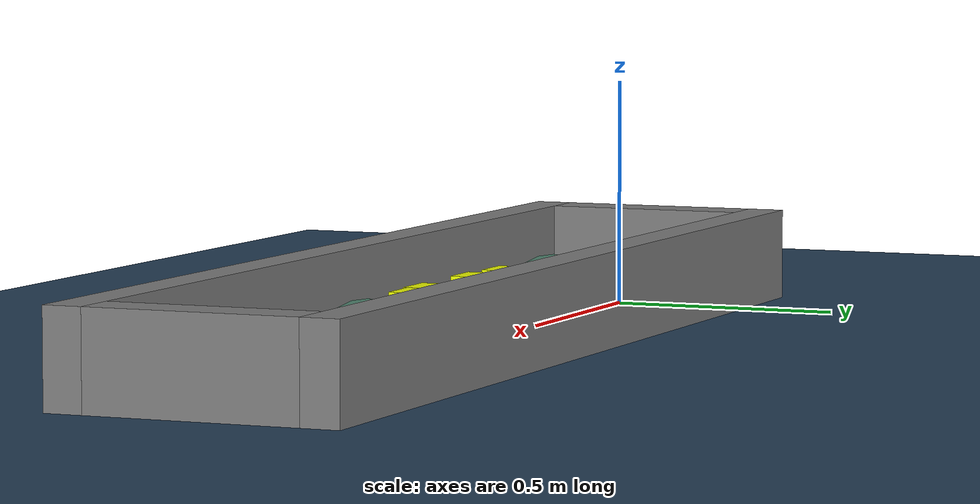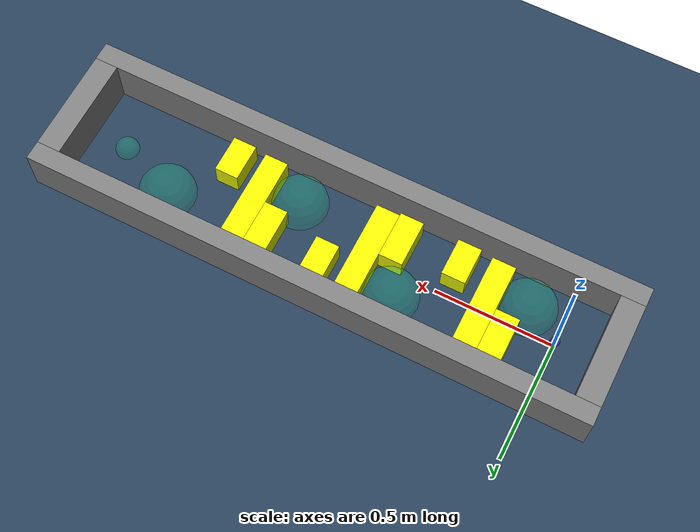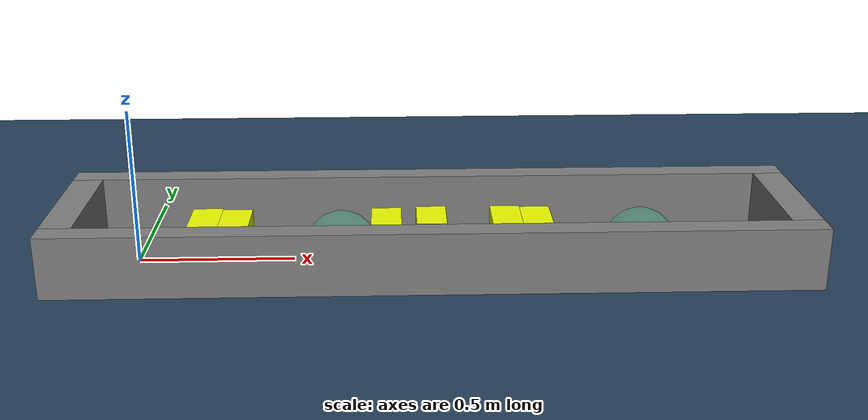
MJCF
<mujoco>
  <option timestep="0.01" integrator="RK4" />
  <worldbody>
    <light pos="0 0 1.5" dir="0 0 -1" directional="true" />
    <geom name="floor" size="0 0 0.05" type="plane" material="groundplane" friction=".5 0.005 0.001"
      priority="2" condim="4" />
  </worldbody>

  <worldbody>

    <body name="ball" pos=".0 0 .05">
      <geom name="gball_0" type="sphere" size="0.02" mass="5." material="BallMat"
        friction=".5 0.005 0.001 " condim="4" />
      <site name="sensor_ball" />
      <joint name="joint_x" type="slide" pos="0 0 0" axis="1 0 0" />
      <joint name="joint_y" type="slide" pos="0 0 0" axis="0 1 0" />
    </body>

    <body name="wall_1" pos="0.2 0.1 .05" euler="0 0 0">
      <freejoint />
      <geom name="movable_1" type="box" size="0.05 0.1 0.05" mass=".1" material="movable" condim="4" />
    </body>

    <body name="wall_2" pos="0.45 -0.12 .05" euler="0 0 0">
      <freejoint />
      <geom name="movable_2" type="box" size="0.05 0.08 0.05" mass=".1" material="movable" condim="4" />
    </body>

    <body name="movable_cube1" pos="0.3 0 .05" euler="0 0 0">
      <freejoint />
      <geom name="movable_cube1" type="box" size="0.05 0.19 0.05" mass=".1" material="movable"
        condim="4" />
    </body>

    <body name="wall_3" pos="0.7 -0.1 .05" euler="0 0 0">
      <freejoint />
      <geom name="movable_3" type="box" size="0.05 0.1 0.05" mass=".1" material="movable" condim="4" />
    </body>

    <body name="wall_4" pos="0.95 0.12 .05" euler="0 0 0">
      <freejoint />
      <geom name="movable_4" type="box" size="0.05 0.08 0.05" mass=".1" material="movable" condim="4" />
    </body>

    <body name="movable_cube2" pos="0.8 0 .05" euler="0 0 0">
      <freejoint />
      <geom name="movable_cube2" type="box" size="0.05 0.19 0.05" mass=".1" material="movable"
        condim="4" />
    </body>

    <body name="wall_5" pos="1.2 0.1 .05" euler="0 0 0">
      <freejoint />
      <geom name="movable_5" type="box" size="0.05 0.1 0.05" mass=".1" material="movable" condim="4" />
    </body>

    <body name="wall_6" pos="1.45 -0.12 .05" euler="0 0 0">
      <freejoint />
      <geom name="movable_6" type="box" size="0.05 0.08 0.05" mass=".1" material="movable" condim="4" />
    </body>

    <body name="movable_cube3" pos="1.3 0 .05" euler="0 0 0">
      <freejoint />
      <geom name="movable_cube3" type="box" size="0.05 0.19 0.05" mass=".1" material="movable"
        condim="4" />
    </body>

    <body name="case" pos="0 0 0.1">
      <geom name="gcase_a" type="box" size="0.05 0.22 0.1" pos="-.2 0 0" />
      <geom name="gcase_b" type="box" size="0.05 0.22 0.1" pos="2.1 0 0" />
      <geom name="gcase_c" type="box" size="1.2 0.04 0.1" pos="0.95 .26 0" />
      <geom name="gcase_d" type="box" size="1.2 0.04 0.1" pos="0.95 -.26 0" />
    </body>

    <site name="target1" pos="0.15 -0.1 0.0" size="0.12" rgba="0 1 0.6 0.2" />
    <site name="target2" pos="0.3 -0.1 0.0" size="0.05" rgba="0 1 0.6 0.2" />
    <site name="target3" pos="0.3 0.1 0.0" size="0.05" rgba="0 1 0.6 0.2" />
    <site name="target4" pos="0.65 0.1 0.0" size="0.12" rgba="0 1 0.6 0.2" />
    <site name="target5" pos="0.8 0.1 0.0" size="0.05" rgba="0 1 0.6 0.2" />
    <site name="target6" pos="0.8 -0.1 0.0" size="0.05" rgba="0 1 0.6 0.2" />
    <site name="target7" pos="1.15 -0.1 0.0" size="0.12" rgba="0 1 0.6 0.2" />
    <site name="target8" pos="1.3 -0.1 0.0" size="0.05" rgba="0 1 0.6 0.2" />
    <site name="target9" pos="1.3 0.1 0.0" size="0.05" rgba="0 1 0.6 0.2" />
    <site name="target10" pos="1.65 0.1 0.0" size="0.12" rgba="0 1 0.6 0.2" />
    <site name="target11" pos="1.9 0.0 0.0" size="0.05" rgba="0 1 0.6 0.2" />

  </worldbody>

  <actuator>
    <motor name="actuator_x" joint="joint_x" gear="1" />
    <motor name="actuator_y" joint="joint_y" gear="1" />
  </actuator>

  <asset>
    <!-- Materials for visualization -->
    <material name="MatPlane" rgba="0.8 0.9 0.8 1" />
    <material name="movable" rgba="0.94 1.0 0.0 1" />
    <material name="static" rgba="0.8 0.2 0.2 1" />
    <material name="BallMat" rgba="0.2 0.2 0.8 1" />

    <texture type="skybox" builtin="gradient" rgb1="0.3 0.5 0.7" rgb2="0 0 0" width="512"
      height="3072" />
    <texture type="2d" name="groundplane" builtin="checker" mark="edge" rgb1="0.2 0.3 0.4"
      rgb2="0.1 0.2 0.3"
      markrgb="0.8 0.8 0.8" width="300" height="300" />
    <material name="groundplane" texture="groundplane" texuniform="true" texrepeat="5 5"
      reflectance="0.2" />
  </asset>

  <visual>
    <headlight diffuse="0.6 0.6 0.6" ambient="0.3 0.3 0.3" specular="0 0 0" />
    <rgba haze="0.15 0.25 0.35 1" />
    <global azimuth="60" elevation="-20" />
  </visual>

  <sensor>
    <velocimeter name="sensor_ball" site="sensor_ball" />
  </sensor>

</mujoco>
